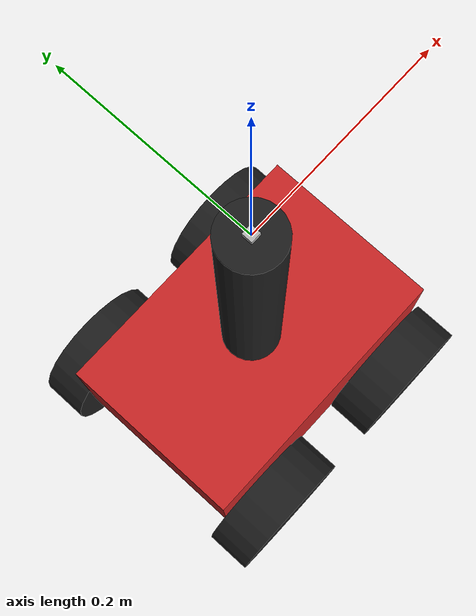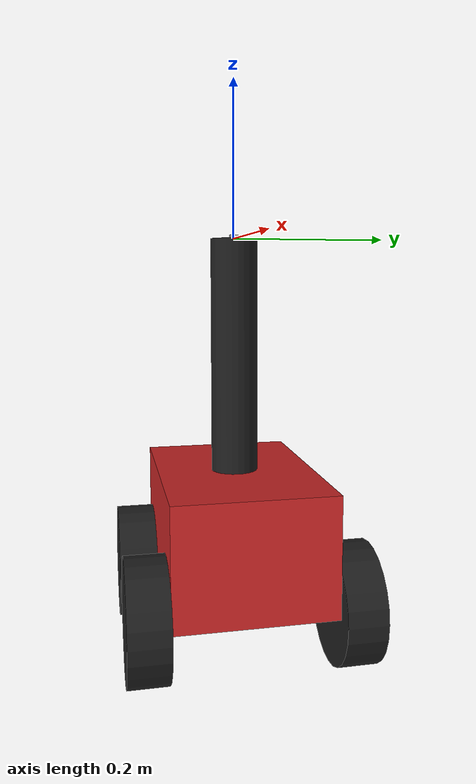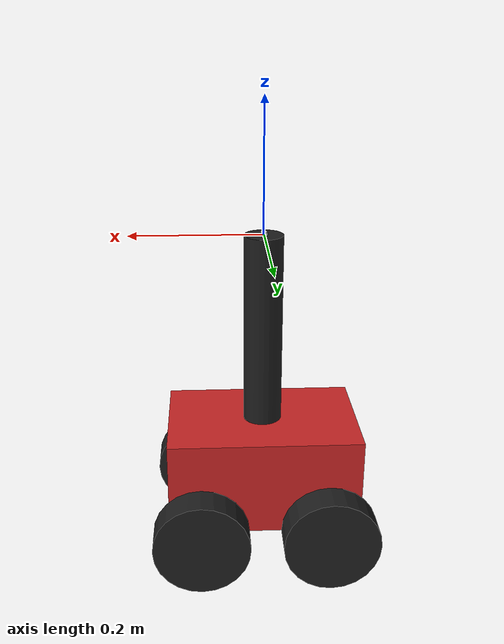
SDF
<sdf version='1.7'>
  <model name='example'>
    <link name='base_origin'>
      <inertial>
        <pose>0 0 0 0 0 0</pose>
        <mass>1.0</mass>
        <inertia>
          <ixx>0.1</ixx>
          <ixy>0</ixy>
          <ixz>0</ixz>
          <iyy>0.1</iyy>
          <iyz>0</iyz>
          <izz>0.1</izz>
        </inertia>
      </inertial>
      <visual name='base_origin_visual'>
        <pose>0 0 0 0 0 0</pose>
        <geometry>
          <box>
            <size>0.01 0.01 0.01</size>
          </box>
        </geometry>
      </visual>
      <visual name='base_origin_fixed_joint_lump__base_link_visual_1'>
        <pose>0 0 -0.375 0 0 0</pose>
        <geometry>
          <box>
            <size>0.3 0.2 0.15</size>
          </box>
        </geometry>
        <material>
          <script>
            <name>Gazebo/Red</name>
            <uri>file://media/materials/scripts/gazebo.material</uri>
          </script>
        </material>
      </visual>
      <visual name='base_origin_fixed_joint_lump__left_front_wheel_visual_2'>
        <pose>0.1 -0.125 -0.45 1.57 0 0</pose>
        <geometry>
          <cylinder>
            <length>0.05</length>
            <radius>0.075</radius>
          </cylinder>
        </geometry>
        <material>
          <script>
            <name>Gazebo/Black</name>
            <uri>file://media/materials/scripts/gazebo.material</uri>
          </script>
        </material>
      </visual>
      <visual name='base_origin_fixed_joint_lump__left_rear_wheel_visual_3'>
        <pose>-0.1 -0.125 -0.45 1.57 0 0</pose>
        <geometry>
          <cylinder>
            <length>0.05</length>
            <radius>0.075</radius>
          </cylinder>
        </geometry>
        <material>
          <script>
            <name>Gazebo/Black</name>
            <uri>file://media/materials/scripts/gazebo.material</uri>
          </script>
        </material>
      </visual>
      <visual name='base_origin_fixed_joint_lump__right_rear_wheel_visual_4'>
        <pose>-0.1 0.125 -0.45 -1.57 0 0</pose>
        <geometry>
          <cylinder>
            <length>0.05</length>
            <radius>0.075</radius>
          </cylinder>
        </geometry>
        <material>
          <script>
            <name>Gazebo/Black</name>
            <uri>file://media/materials/scripts/gazebo.material</uri>
          </script>
        </material>
      </visual>
      <visual name='base_origin_fixed_joint_lump__right_front_wheel_visual_5'>
        <pose>0.1 0.125 -0.45 -1.57 0 0</pose>
        <geometry>
          <cylinder>
            <length>0.05</length>
            <radius>0.075</radius>
          </cylinder>
        </geometry>
        <material>
          <script>
            <name>Gazebo/Black</name>
            <uri>file://media/materials/scripts/gazebo.material</uri>
          </script>
        </material>
      </visual>
      <visual name='base_origin_fixed_joint_lump__lidar_holder_visual_6'>
        <pose>0 0 -0.175 0 0 0</pose>
        <geometry>
          <cylinder>
            <length>0.35</length>
            <radius>0.03</radius>
          </cylinder>
        </geometry>
        <material>
          <script>
            <name>Gazebo/Black</name>
            <uri>file://media/materials/scripts/gazebo.material</uri>
          </script>
        </material>
      </visual>
    </link>
  </model>
</sdf>
